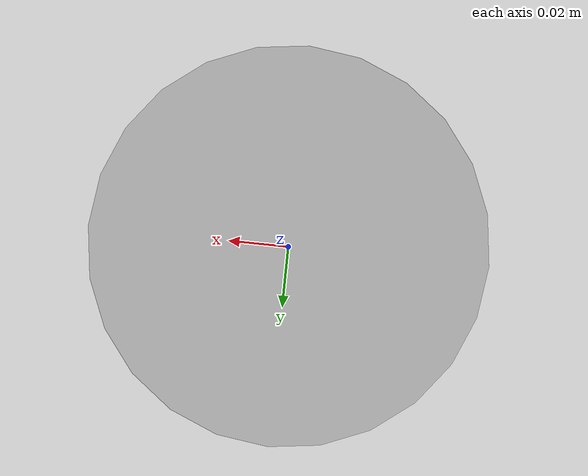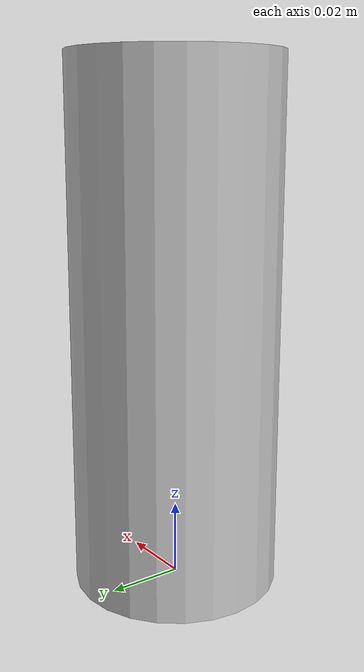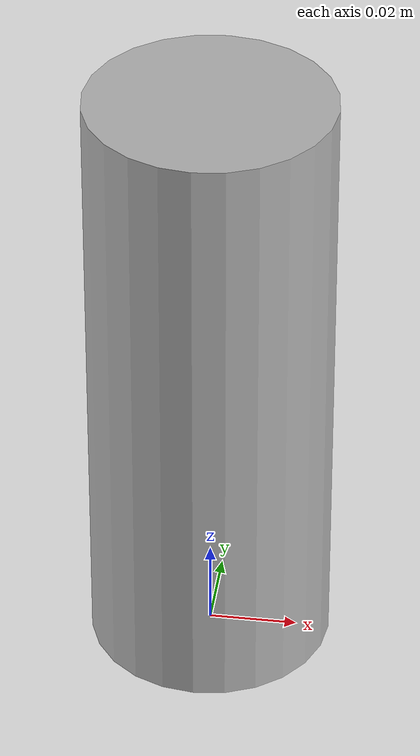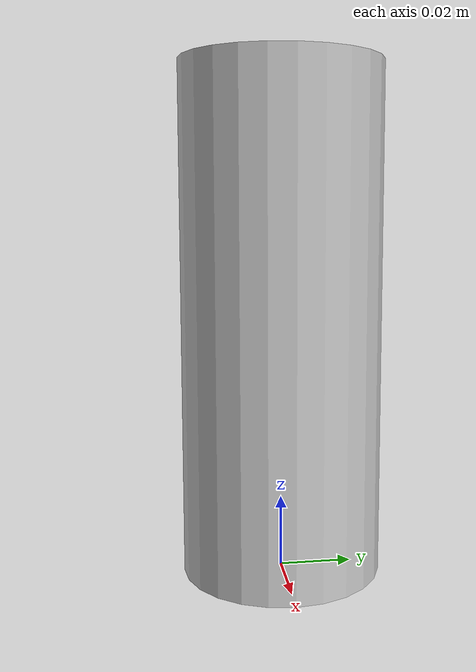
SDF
<?xml version="1.0"?>

<sdf version="1.8">

    <model name="can">

        <link name="can_link">

            <!-- Pose                            -->

            <pose>
                0 0 0.07 0 0 0
            </pose>

            <!-- Visual                          -->

            <visual name="can_visual">

                <geometry>

                    <cylinder>

                        <radius>
                            0.0275
                        </radius>

                        <length>
                            0.14
                        </length>

                    </cylinder>

                </geometry>

                <material>

                    <ambient>
                        0.7 0.7 0.7 1
                    </ambient>

                    <diffuse>
                        0.7 0.7 0.7 1
                    </diffuse>

                    <specular>
                        0.8 0.8 0.8 1
                    </specular>

                </material>

            </visual>

            <!-- Collision                       -->

            <collision name="can_collision">

                <geometry>

                    <cylinder>

                        <radius>
                            0.0275
                        </radius>

                        <length>
                            0.14
                        </length>

                    </cylinder>

                </geometry>

            </collision>

            <!-- Inertial                        -->

            <inertial>

                <mass>
                    0.015
                </mass>

                <inertia>

                    <ixx>
                        0.00002
                    </ixx>

                    <iyy>
                        0.00002
                    </iyy>

                    <izz>
                        0.00001
                    </izz>

                </inertia>

            </inertial>

        </link>

    </model>

</sdf>
